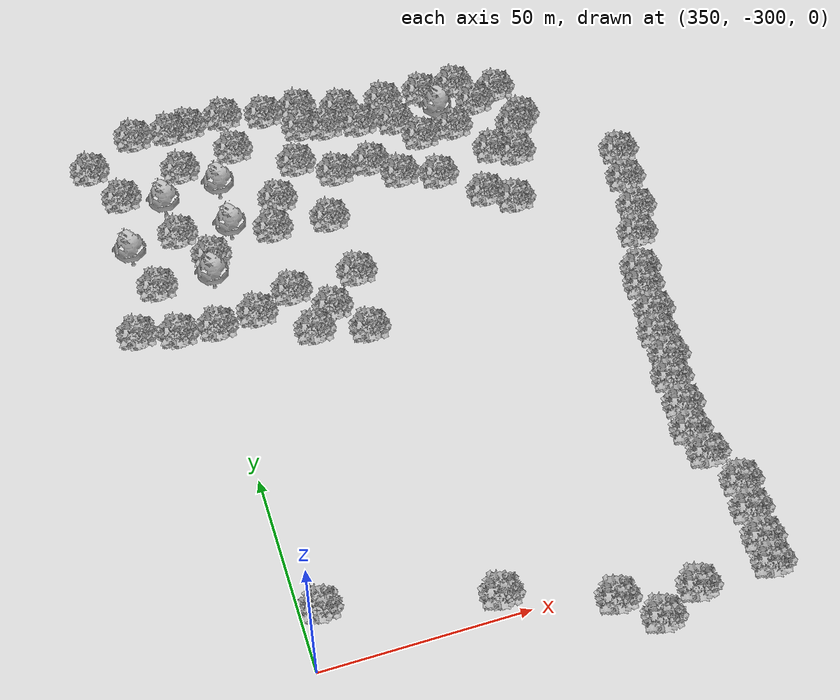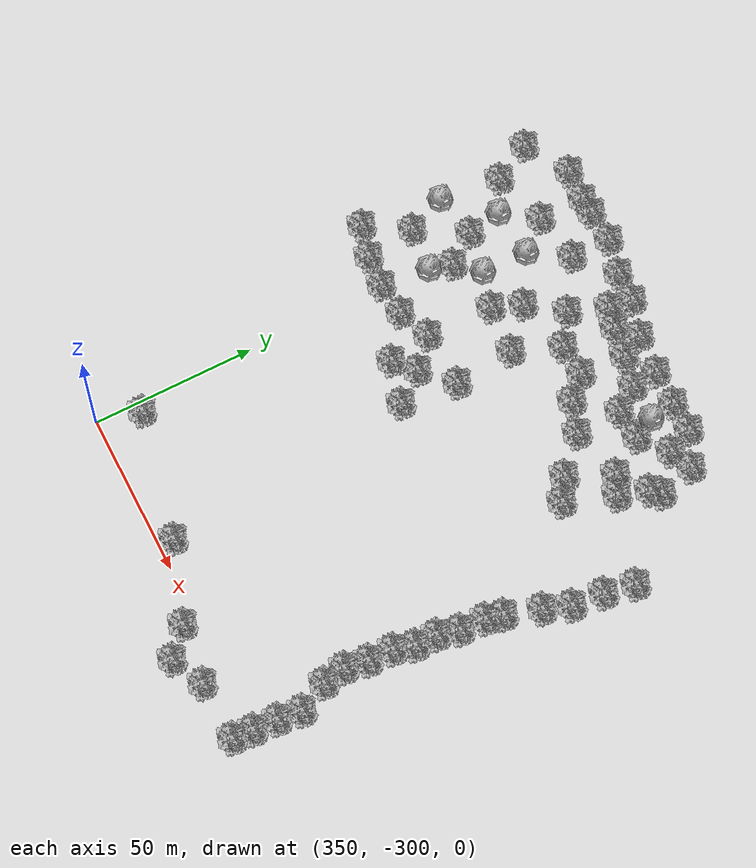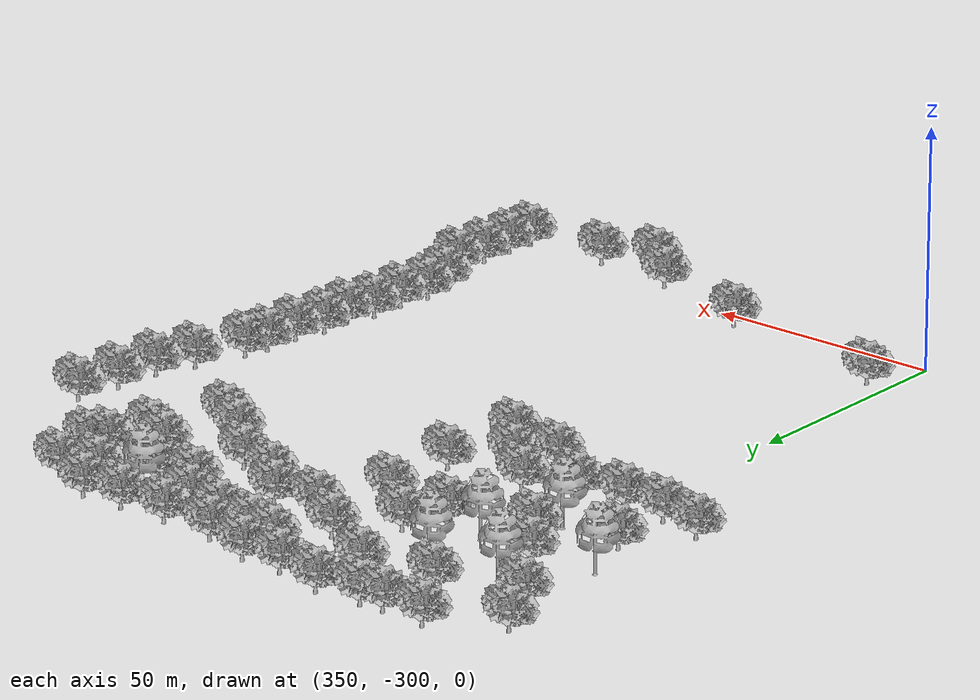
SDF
<sdf version="1.7">
 <world name="default">
  <model name="Tree_4">
   <static>1</static>
   <pose>339.28 -190.97 0 0 -0 0</pose>
   <link name="Tree_4">
    <visual name="Tree_4"><geometry><mesh><uri>model://Tree_4/Tree_4.dae</uri></mesh></geometry></visual>
    <collision name="Tree_4"><geometry><mesh><uri>model://Tree_4/Tree_4.dae</uri></mesh></geometry></collision>
   </link>
  </model>
  <model name="Tree_4_0">
   <static>1</static>
   <pose>347.897 -176.209 0 0 -0 0</pose>
   <link name="Tree_4">
    <visual name="Tree_4"><geometry><mesh><uri>model://Tree_4/Tree_4.dae</uri></mesh></geometry></visual>
    <collision name="Tree_4"><geometry><mesh><uri>model://Tree_4/Tree_4.dae</uri></mesh></geometry></collision>
   </link>
  </model>
  <model name="Tree_4_2">
   <static>1</static>
   <pose>330.451 -149.005 0 0 -0 0</pose>
   <link name="Tree_4">
    <visual name="Tree_4"><geometry><mesh><uri>model://Tree_4/Tree_4.dae</uri></mesh></geometry></visual>
    <collision name="Tree_4"><geometry><mesh><uri>model://Tree_4/Tree_4.dae</uri></mesh></geometry></collision>
   </link>
  </model>
  <model name="Tree_4_4">
   <static>1</static>
   <pose>368.265 -152.797 0 0 -0 0</pose>
   <link name="Tree_4">
    <visual name="Tree_4"><geometry><mesh><uri>model://Tree_4/Tree_4.dae</uri></mesh></geometry></visual>
    <collision name="Tree_4"><geometry><mesh><uri>model://Tree_4/Tree_4.dae</uri></mesh></geometry></collision>
   </link>
  </model>
  <model name="Tree_4_6">
   <static>1</static>
   <pose>383.073 -162.086 0 0 -0 0</pose>
   <link name="Tree_4">
    <visual name="Tree_4"><geometry><mesh><uri>model://Tree_4/Tree_4.dae</uri></mesh></geometry></visual>
    <collision name="Tree_4"><geometry><mesh><uri>model://Tree_4/Tree_4.dae</uri></mesh></geometry></collision>
   </link>
  </model>
  <model name="Tree_4_7">
   <static>1</static>
   <pose>386.443 -182.611 0 0 -0 0</pose>
   <link name="Tree_4">
    <visual name="Tree_4"><geometry><mesh><uri>model://Tree_4/Tree_4.dae</uri></mesh></geometry></visual>
    <collision name="Tree_4"><geometry><mesh><uri>model://Tree_4/Tree_4.dae</uri></mesh></geometry></collision>
   </link>
  </model>
  <model name="Tree_4_8">
   <static>1</static>
   <pose>354.486 -185.345 0 0 -0 0</pose>
   <link name="Tree_4">
    <visual name="Tree_4"><geometry><mesh><uri>model://Tree_4/Tree_4.dae</uri></mesh></geometry></visual>
    <collision name="Tree_4"><geometry><mesh><uri>model://Tree_4/Tree_4.dae</uri></mesh></geometry></collision>
   </link>
  </model>
  <model name="Tree_4_9">
   <static>1</static>
   <pose>371.051 -202.06 0 0 -0 0</pose>
   <link name="Tree_4">
    <visual name="Tree_4"><geometry><mesh><uri>model://Tree_4/Tree_4.dae</uri></mesh></geometry></visual>
    <collision name="Tree_4"><geometry><mesh><uri>model://Tree_4/Tree_4.dae</uri></mesh></geometry></collision>
   </link>
  </model>
  <model name="Tree_4_10">
   <static>1</static>
   <pose>388.218 -201.166 0 0 -0 0</pose>
   <link name="Tree_4">
    <visual name="Tree_4"><geometry><mesh><uri>model://Tree_4/Tree_4.dae</uri></mesh></geometry></visual>
    <collision name="Tree_4"><geometry><mesh><uri>model://Tree_4/Tree_4.dae</uri></mesh></geometry></collision>
   </link>
  </model>
  <model name="Tree_4_11">
   <static>1</static>
   <pose>379.431 -209.697 0 0 -0 0</pose>
   <link name="Tree_4">
    <visual name="Tree_4"><geometry><mesh><uri>model://Tree_4/Tree_4.dae</uri></mesh></geometry></visual>
    <collision name="Tree_4"><geometry><mesh><uri>model://Tree_4/Tree_4.dae</uri></mesh></geometry></collision>
   </link>
  </model>
  <model name="Tree_4_12">
   <static>1</static>
   <pose>373.388 -215.189 0 0 -0 0</pose>
   <link name="Tree_4">
    <visual name="Tree_4"><geometry><mesh><uri>model://Tree_4/Tree_4.dae</uri></mesh></geometry></visual>
    <collision name="Tree_4"><geometry><mesh><uri>model://Tree_4/Tree_4.dae</uri></mesh></geometry></collision>
   </link>
  </model>
  <model name="Tree_4_13">
   <static>1</static>
   <pose>386.429 -218.572 0 0 -0 0</pose>
   <link name="Tree_4">
    <visual name="Tree_4"><geometry><mesh><uri>model://Tree_4/Tree_4.dae</uri></mesh></geometry></visual>
    <collision name="Tree_4"><geometry><mesh><uri>model://Tree_4/Tree_4.dae</uri></mesh></geometry></collision>
   </link>
  </model>
  <model name="Tree_4_14">
   <static>1</static>
   <pose>361.127 -206.063 0 0 -0 0</pose>
   <link name="Tree_4">
    <visual name="Tree_4"><geometry><mesh><uri>model://Tree_4/Tree_4.dae</uri></mesh></geometry></visual>
    <collision name="Tree_4"><geometry><mesh><uri>model://Tree_4/Tree_4.dae</uri></mesh></geometry></collision>
   </link>
  </model>
  <model name="Tree_4_15">
   <static>1</static>
   <pose>350.839 -207.13 0 0 -0 0</pose>
   <link name="Tree_4">
    <visual name="Tree_4"><geometry><mesh><uri>model://Tree_4/Tree_4.dae</uri></mesh></geometry></visual>
    <collision name="Tree_4"><geometry><mesh><uri>model://Tree_4/Tree_4.dae</uri></mesh></geometry></collision>
   </link>
  </model>
  <model name="Tree_4_16">
   <static>1</static>
   <pose>341.073 -206.354 0 0 -0 0</pose>
   <link name="Tree_4">
    <visual name="Tree_4"><geometry><mesh><uri>model://Tree_4/Tree_4.dae</uri></mesh></geometry></visual>
    <collision name="Tree_4"><geometry><mesh><uri>model://Tree_4/Tree_4.dae</uri></mesh></geometry></collision>
   </link>
  </model>
  <model name="Tree_4_17">
   <static>1</static>
   <pose>331.419 -203.799 0 0 -0 0</pose>
   <link name="Tree_4">
    <visual name="Tree_4"><geometry><mesh><uri>model://Tree_4/Tree_4.dae</uri></mesh></geometry></visual>
    <collision name="Tree_4"><geometry><mesh><uri>model://Tree_4/Tree_4.dae</uri></mesh></geometry></collision>
   </link>
  </model>
  <model name="Tree_4_31">
   <static>1</static>
   <pose>371.664 -181.554 0 0 -0 0</pose>
   <link name="Tree_4">
    <visual name="Tree_4"><geometry><mesh><uri>model://Tree_4/Tree_4.dae</uri></mesh></geometry></visual>
    <collision name="Tree_4"><geometry><mesh><uri>model://Tree_4/Tree_4.dae</uri></mesh></geometry></collision>
   </link>
  </model>
  <model name="Tree_4_32">
   <static>1</static>
   <pose>375.208 -172.674 0 0 -0 0</pose>
   <link name="Tree_4">
    <visual name="Tree_4"><geometry><mesh><uri>model://Tree_4/Tree_4.dae</uri></mesh></geometry></visual>
    <collision name="Tree_4"><geometry><mesh><uri>model://Tree_4/Tree_4.dae</uri></mesh></geometry></collision>
   </link>
  </model>
  <model name="Tree_4_34">
   <static>1</static>
   <pose>353.29 -155.518 0 0 -0 0</pose>
   <link name="Tree_4">
    <visual name="Tree_4"><geometry><mesh><uri>model://Tree_4/Tree_4.dae</uri></mesh></geometry></visual>
    <collision name="Tree_4"><geometry><mesh><uri>model://Tree_4/Tree_4.dae</uri></mesh></geometry></collision>
   </link>
  </model>
  <model name="Tree_4_36">
   <static>1</static>
   <pose>336.554 -160.464 0 0 -0 0</pose>
   <link name="Tree_4">
    <visual name="Tree_4"><geometry><mesh><uri>model://Tree_4/Tree_4.dae</uri></mesh></geometry></visual>
    <collision name="Tree_4"><geometry><mesh><uri>model://Tree_4/Tree_4.dae</uri></mesh></geometry></collision>
   </link>
  </model>
  <model name="Tree_4_40">
   <static>1</static>
   <pose>387.436 -150.58 0 0 -0 0</pose>
   <link name="Tree_4">
    <visual name="Tree_4"><geometry><mesh><uri>model://Tree_4/Tree_4.dae</uri></mesh></geometry></visual>
    <collision name="Tree_4"><geometry><mesh><uri>model://Tree_4/Tree_4.dae</uri></mesh></geometry></collision>
   </link>
  </model>
  <model name="Tree_4_41">
   <static>1</static>
   <pose>388.374 -143.486 0 0 -0 0</pose>
   <link name="Tree_4">
    <visual name="Tree_4"><geometry><mesh><uri>model://Tree_4/Tree_4.dae</uri></mesh></geometry></visual>
    <collision name="Tree_4"><geometry><mesh><uri>model://Tree_4/Tree_4.dae</uri></mesh></geometry></collision>
   </link>
  </model>
  <model name="Tree_4_42">
   <static>1</static>
   <pose>379.071 -143.154 0 0 -0 0</pose>
   <link name="Tree_4">
    <visual name="Tree_4"><geometry><mesh><uri>model://Tree_4/Tree_4.dae</uri></mesh></geometry></visual>
    <collision name="Tree_4"><geometry><mesh><uri>model://Tree_4/Tree_4.dae</uri></mesh></geometry></collision>
   </link>
  </model>
  <model name="Tree_4_43">
   <static>1</static>
   <pose>368.353 -140.633 0 0 -0 0</pose>
   <link name="Tree_4">
    <visual name="Tree_4"><geometry><mesh><uri>model://Tree_4/Tree_4.dae</uri></mesh></geometry></visual>
    <collision name="Tree_4"><geometry><mesh><uri>model://Tree_4/Tree_4.dae</uri></mesh></geometry></collision>
   </link>
  </model>
  <model name="Tree_4_44">
   <static>1</static>
   <pose>358.398 -141.203 0 0 -0 0</pose>
   <link name="Tree_4">
    <visual name="Tree_4"><geometry><mesh><uri>model://Tree_4/Tree_4.dae</uri></mesh></geometry></visual>
    <collision name="Tree_4"><geometry><mesh><uri>model://Tree_4/Tree_4.dae</uri></mesh></geometry></collision>
   </link>
  </model>
  <model name="Tree_4_45">
   <static>1</static>
   <pose>353.327 -141.537 0 0 -0 0</pose>
   <link name="Tree_4">
    <visual name="Tree_4"><geometry><mesh><uri>model://Tree_4/Tree_4.dae</uri></mesh></geometry></visual>
    <collision name="Tree_4"><geometry><mesh><uri>model://Tree_4/Tree_4.dae</uri></mesh></geometry></collision>
   </link>
  </model>
  <model name="Tree_4_46">
   <static>1</static>
   <pose>343.755 -140.995 0 0 -0 0</pose>
   <link name="Tree_4">
    <visual name="Tree_4"><geometry><mesh><uri>model://Tree_4/Tree_4.dae</uri></mesh></geometry></visual>
    <collision name="Tree_4"><geometry><mesh><uri>model://Tree_4/Tree_4.dae</uri></mesh></geometry></collision>
   </link>
  </model>
  <model name="Tree_4_51">
   <static>1</static>
   <pose>392.118 -168.324 0 0 -0 0</pose>
   <link name="Tree_4">
    <visual name="Tree_4"><geometry><mesh><uri>model://Tree_4/Tree_4.dae</uri></mesh></geometry></visual>
    <collision name="Tree_4"><geometry><mesh><uri>model://Tree_4/Tree_4.dae</uri></mesh></geometry></collision>
   </link>
  </model>
  <model name="Tree_4_52">
   <static>1</static>
   <pose>393.74 -152.171 0 0 -0 0</pose>
   <link name="Tree_4">
    <visual name="Tree_4"><geometry><mesh><uri>model://Tree_4/Tree_4.dae</uri></mesh></geometry></visual>
    <collision name="Tree_4"><geometry><mesh><uri>model://Tree_4/Tree_4.dae</uri></mesh></geometry></collision>
   </link>
  </model>
  <model name="Tree_4_53">
   <static>1</static>
   <pose>401.908 -167.588 0 0 -0 0</pose>
   <link name="Tree_4">
    <visual name="Tree_4"><geometry><mesh><uri>model://Tree_4/Tree_4.dae</uri></mesh></geometry></visual>
    <collision name="Tree_4"><geometry><mesh><uri>model://Tree_4/Tree_4.dae</uri></mesh></geometry></collision>
   </link>
  </model>
  <model name="Tree_4_54">
   <static>1</static>
   <pose>408.254 -173.837 0 0 -0 0</pose>
   <link name="Tree_4">
    <visual name="Tree_4"><geometry><mesh><uri>model://Tree_4/Tree_4.dae</uri></mesh></geometry></visual>
    <collision name="Tree_4"><geometry><mesh><uri>model://Tree_4/Tree_4.dae</uri></mesh></geometry></collision>
   </link>
  </model>
  <model name="Tree_4_55">
   <static>1</static>
   <pose>417.777 -177.154 0 0 -0 0</pose>
   <link name="Tree_4">
    <visual name="Tree_4"><geometry><mesh><uri>model://Tree_4/Tree_4.dae</uri></mesh></geometry></visual>
    <collision name="Tree_4"><geometry><mesh><uri>model://Tree_4/Tree_4.dae</uri></mesh></geometry></collision>
   </link>
  </model>
  <model name="Tree_4_56">
   <static>1</static>
   <pose>427.672 -186.53 0 0 -0 0</pose>
   <link name="Tree_4">
    <visual name="Tree_4"><geometry><mesh><uri>model://Tree_4/Tree_4.dae</uri></mesh></geometry></visual>
    <collision name="Tree_4"><geometry><mesh><uri>model://Tree_4/Tree_4.dae</uri></mesh></geometry></collision>
   </link>
  </model>
  <model name="Tree_4_57">
   <static>1</static>
   <pose>434.262 -190.8 0 0 -0 0</pose>
   <link name="Tree_4">
    <visual name="Tree_4"><geometry><mesh><uri>model://Tree_4/Tree_4.dae</uri></mesh></geometry></visual>
    <collision name="Tree_4"><geometry><mesh><uri>model://Tree_4/Tree_4.dae</uri></mesh></geometry></collision>
   </link>
  </model>
  <model name="Tree_4_58">
   <static>1</static>
   <pose>439.753 -175.669 0 0 -0 0</pose>
   <link name="Tree_4">
    <visual name="Tree_4"><geometry><mesh><uri>model://Tree_4/Tree_4.dae</uri></mesh></geometry></visual>
    <collision name="Tree_4"><geometry><mesh><uri>model://Tree_4/Tree_4.dae</uri></mesh></geometry></collision>
   </link>
  </model>
  <model name="Tree_4_59">
   <static>1</static>
   <pose>434.03 -173.026 0 0 -0 0</pose>
   <link name="Tree_4">
    <visual name="Tree_4"><geometry><mesh><uri>model://Tree_4/Tree_4.dae</uri></mesh></geometry></visual>
    <collision name="Tree_4"><geometry><mesh><uri>model://Tree_4/Tree_4.dae</uri></mesh></geometry></collision>
   </link>
  </model>
  <model name="Tree_4_60">
   <static>1</static>
   <pose>402.92 -153.695 0 0 -0 0</pose>
   <link name="Tree_4">
    <visual name="Tree_4"><geometry><mesh><uri>model://Tree_4/Tree_4.dae</uri></mesh></geometry></visual>
    <collision name="Tree_4"><geometry><mesh><uri>model://Tree_4/Tree_4.dae</uri></mesh></geometry></collision>
   </link>
  </model>
  <model name="Tree_4_61">
   <static>1</static>
   <pose>412.315 -155.906 0 0 -0 0</pose>
   <link name="Tree_4">
    <visual name="Tree_4"><geometry><mesh><uri>model://Tree_4/Tree_4.dae</uri></mesh></geometry></visual>
    <collision name="Tree_4"><geometry><mesh><uri>model://Tree_4/Tree_4.dae</uri></mesh></geometry></collision>
   </link>
  </model>
  <model name="Tree_4_62">
   <static>1</static>
   <pose>417.374 -163.016 0 0 -0 0</pose>
   <link name="Tree_4">
    <visual name="Tree_4"><geometry><mesh><uri>model://Tree_4/Tree_4.dae</uri></mesh></geometry></visual>
    <collision name="Tree_4"><geometry><mesh><uri>model://Tree_4/Tree_4.dae</uri></mesh></geometry></collision>
   </link>
  </model>
  <model name="Tree_4_63">
   <static>1</static>
   <pose>426.644 -162.252 0 0 -0 0</pose>
   <link name="Tree_4">
    <visual name="Tree_4"><geometry><mesh><uri>model://Tree_4/Tree_4.dae</uri></mesh></geometry></visual>
    <collision name="Tree_4"><geometry><mesh><uri>model://Tree_4/Tree_4.dae</uri></mesh></geometry></collision>
   </link>
  </model>
  <model name="Tree_4_64">
   <static>1</static>
   <pose>434.963 -155.537 0 0 -0 0</pose>
   <link name="Tree_4">
    <visual name="Tree_4"><geometry><mesh><uri>model://Tree_4/Tree_4.dae</uri></mesh></geometry></visual>
    <collision name="Tree_4"><geometry><mesh><uri>model://Tree_4/Tree_4.dae</uri></mesh></geometry></collision>
   </link>
  </model>
  <model name="Tree_4_65">
   <static>1</static>
   <pose>441.876 -152.616 0 0 -0 0</pose>
   <link name="Tree_4">
    <visual name="Tree_4"><geometry><mesh><uri>model://Tree_4/Tree_4.dae</uri></mesh></geometry></visual>
    <collision name="Tree_4"><geometry><mesh><uri>model://Tree_4/Tree_4.dae</uri></mesh></geometry></collision>
   </link>
  </model>
  <model name="Tree_4_66">
   <static>1</static>
   <pose>431.436 -147.754 0 0 -0 0</pose>
   <link name="Tree_4">
    <visual name="Tree_4"><geometry><mesh><uri>model://Tree_4/Tree_4.dae</uri></mesh></geometry></visual>
    <collision name="Tree_4"><geometry><mesh><uri>model://Tree_4/Tree_4.dae</uri></mesh></geometry></collision>
   </link>
  </model>
  <model name="Tree_4_67">
   <static>1</static>
   <pose>422.13 -147.897 0 0 -0 0</pose>
   <link name="Tree_4">
    <visual name="Tree_4"><geometry><mesh><uri>model://Tree_4/Tree_4.dae</uri></mesh></geometry></visual>
    <collision name="Tree_4"><geometry><mesh><uri>model://Tree_4/Tree_4.dae</uri></mesh></geometry></collision>
   </link>
  </model>
  <model name="Tree_4_68">
   <static>1</static>
   <pose>411.372 -147.824 0 0 -0 0</pose>
   <link name="Tree_4">
    <visual name="Tree_4"><geometry><mesh><uri>model://Tree_4/Tree_4.dae</uri></mesh></geometry></visual>
    <collision name="Tree_4"><geometry><mesh><uri>model://Tree_4/Tree_4.dae</uri></mesh></geometry></collision>
   </link>
  </model>
  <model name="Tree_4_69">
   <static>1</static>
   <pose>399.282 -146.87 0 0 -0 0</pose>
   <link name="Tree_4">
    <visual name="Tree_4"><geometry><mesh><uri>model://Tree_4/Tree_4.dae</uri></mesh></geometry></visual>
    <collision name="Tree_4"><geometry><mesh><uri>model://Tree_4/Tree_4.dae</uri></mesh></geometry></collision>
   </link>
  </model>
  <model name="Tree_4_70">
   <static>1</static>
   <pose>442.613 -166.62 0 0 -0 0</pose>
   <link name="Tree_4">
    <visual name="Tree_4"><geometry><mesh><uri>model://Tree_4/Tree_4.dae</uri></mesh></geometry></visual>
    <collision name="Tree_4"><geometry><mesh><uri>model://Tree_4/Tree_4.dae</uri></mesh></geometry></collision>
   </link>
  </model>
  <model name="Tree_4_71">
   <static>1</static>
   <pose>445.006 -163.936 0 0 -0 0</pose>
   <link name="Tree_4">
    <visual name="Tree_4"><geometry><mesh><uri>model://Tree_4/Tree_4.dae</uri></mesh></geometry></visual>
    <collision name="Tree_4"><geometry><mesh><uri>model://Tree_4/Tree_4.dae</uri></mesh></geometry></collision>
   </link>
  </model>
  <model name="Tree_4_72">
   <static>1</static>
   <pose>464.028 -192.907 0 0 -0 0</pose>
   <link name="Tree_4">
    <visual name="Tree_4"><geometry><mesh><uri>model://Tree_4/Tree_4.dae</uri></mesh></geometry></visual>
    <collision name="Tree_4"><geometry><mesh><uri>model://Tree_4/Tree_4.dae</uri></mesh></geometry></collision>
   </link>
  </model>
  <model name="Tree_4_73">
   <static>1</static>
   <pose>465.798 -183.516 0 0 -0 0</pose>
   <link name="Tree_4">
    <visual name="Tree_4"><geometry><mesh><uri>model://Tree_4/Tree_4.dae</uri></mesh></geometry></visual>
    <collision name="Tree_4"><geometry><mesh><uri>model://Tree_4/Tree_4.dae</uri></mesh></geometry></collision>
   </link>
  </model>
  <model name="Tree_4_74">
   <static>1</static>
   <pose>463.115 -202.702 0 0 -0 0</pose>
   <link name="Tree_4">
    <visual name="Tree_4"><geometry><mesh><uri>model://Tree_4/Tree_4.dae</uri></mesh></geometry></visual>
    <collision name="Tree_4"><geometry><mesh><uri>model://Tree_4/Tree_4.dae</uri></mesh></geometry></collision>
   </link>
  </model>
  <model name="Tree_4_75">
   <static>1</static>
   <pose>460.152 -210.776 0 0 -0 0</pose>
   <link name="Tree_4">
    <visual name="Tree_4"><geometry><mesh><uri>model://Tree_4/Tree_4.dae</uri></mesh></geometry></visual>
    <collision name="Tree_4"><geometry><mesh><uri>model://Tree_4/Tree_4.dae</uri></mesh></geometry></collision>
   </link>
  </model>
  <model name="Tree_4_76">
   <static>1</static>
   <pose>456.682 -221.476 0 0 -0 0</pose>
   <link name="Tree_4">
    <visual name="Tree_4"><geometry><mesh><uri>model://Tree_4/Tree_4.dae</uri></mesh></geometry></visual>
    <collision name="Tree_4"><geometry><mesh><uri>model://Tree_4/Tree_4.dae</uri></mesh></geometry></collision>
   </link>
  </model>
  <model name="Tree_4_77">
   <static>1</static>
   <pose>455.466 -226.649 0 0 -0 0</pose>
   <link name="Tree_4">
    <visual name="Tree_4"><geometry><mesh><uri>model://Tree_4/Tree_4.dae</uri></mesh></geometry></visual>
    <collision name="Tree_4"><geometry><mesh><uri>model://Tree_4/Tree_4.dae</uri></mesh></geometry></collision>
   </link>
  </model>
  <model name="Tree_4_78">
   <static>1</static>
   <pose>455.046 -234.53 0 0 -0 0</pose>
   <link name="Tree_4">
    <visual name="Tree_4"><geometry><mesh><uri>model://Tree_4/Tree_4.dae</uri></mesh></geometry></visual>
    <collision name="Tree_4"><geometry><mesh><uri>model://Tree_4/Tree_4.dae</uri></mesh></geometry></collision>
   </link>
  </model>
  <model name="Tree_4_79">
   <static>1</static>
   <pose>453.331 -241.225 0 0 -0 0</pose>
   <link name="Tree_4">
    <visual name="Tree_4"><geometry><mesh><uri>model://Tree_4/Tree_4.dae</uri></mesh></geometry></visual>
    <collision name="Tree_4"><geometry><mesh><uri>model://Tree_4/Tree_4.dae</uri></mesh></geometry></collision>
   </link>
  </model>
  <model name="Tree_4_80">
   <static>1</static>
   <pose>453.377 -248.043 0 0 -0 0</pose>
   <link name="Tree_4">
    <visual name="Tree_4"><geometry><mesh><uri>model://Tree_4/Tree_4.dae</uri></mesh></geometry></visual>
    <collision name="Tree_4"><geometry><mesh><uri>model://Tree_4/Tree_4.dae</uri></mesh></geometry></collision>
   </link>
  </model>
  <model name="Tree_4_81">
   <static>1</static>
   <pose>451.584 -254.251 0 0 -0 0</pose>
   <link name="Tree_4">
    <visual name="Tree_4"><geometry><mesh><uri>model://Tree_4/Tree_4.dae</uri></mesh></geometry></visual>
    <collision name="Tree_4"><geometry><mesh><uri>model://Tree_4/Tree_4.dae</uri></mesh></geometry></collision>
   </link>
  </model>
  <model name="Tree_4_82">
   <static>1</static>
   <pose>451.289 -261.958 0 0 -0 0</pose>
   <link name="Tree_4">
    <visual name="Tree_4"><geometry><mesh><uri>model://Tree_4/Tree_4.dae</uri></mesh></geometry></visual>
    <collision name="Tree_4"><geometry><mesh><uri>model://Tree_4/Tree_4.dae</uri></mesh></geometry></collision>
   </link>
  </model>
  <model name="Tree_4_83">
   <static>1</static>
   <pose>450.185 -269.07 0 0 -0 0</pose>
   <link name="Tree_4">
    <visual name="Tree_4"><geometry><mesh><uri>model://Tree_4/Tree_4.dae</uri></mesh></geometry></visual>
    <collision name="Tree_4"><geometry><mesh><uri>model://Tree_4/Tree_4.dae</uri></mesh></geometry></collision>
   </link>
  </model>
  <model name="Tree_4_84">
   <static>1</static>
   <pose>451.539 -276.12 0 0 -0 0</pose>
   <link name="Tree_4">
    <visual name="Tree_4"><geometry><mesh><uri>model://Tree_4/Tree_4.dae</uri></mesh></geometry></visual>
    <collision name="Tree_4"><geometry><mesh><uri>model://Tree_4/Tree_4.dae</uri></mesh></geometry></collision>
   </link>
  </model>
  <model name="Tree_4_85">
   <static>1</static>
   <pose>455.94 -285.266 0 0 -0 0</pose>
   <link name="Tree_4">
    <visual name="Tree_4"><geometry><mesh><uri>model://Tree_4/Tree_4.dae</uri></mesh></geometry></visual>
    <collision name="Tree_4"><geometry><mesh><uri>model://Tree_4/Tree_4.dae</uri></mesh></geometry></collision>
   </link>
  </model>
  <model name="Tree_4_86">
   <static>1</static>
   <pose>455.097 -292.65 0 0 -0 0</pose>
   <link name="Tree_4">
    <visual name="Tree_4"><geometry><mesh><uri>model://Tree_4/Tree_4.dae</uri></mesh></geometry></visual>
    <collision name="Tree_4"><geometry><mesh><uri>model://Tree_4/Tree_4.dae</uri></mesh></geometry></collision>
   </link>
  </model>
  <model name="Tree_4_87">
   <static>1</static>
   <pose>454.693 -300.126 0 0 -0 0</pose>
   <link name="Tree_4">
    <visual name="Tree_4"><geometry><mesh><uri>model://Tree_4/Tree_4.dae</uri></mesh></geometry></visual>
    <collision name="Tree_4"><geometry><mesh><uri>model://Tree_4/Tree_4.dae</uri></mesh></geometry></collision>
   </link>
  </model>
  <model name="Tree_4_88">
   <static>1</static>
   <pose>454.234 -306.416 0 0 -0 0</pose>
   <link name="Tree_4">
    <visual name="Tree_4"><geometry><mesh><uri>model://Tree_4/Tree_4.dae</uri></mesh></geometry></visual>
    <collision name="Tree_4"><geometry><mesh><uri>model://Tree_4/Tree_4.dae</uri></mesh></geometry></collision>
   </link>
  </model>
  <model name="Tree_4_89">
   <static>1</static>
   <pose>436.094 -306.929 0 0 -0 0</pose>
   <link name="Tree_4">
    <visual name="Tree_4"><geometry><mesh><uri>model://Tree_4/Tree_4.dae</uri></mesh></geometry></visual>
    <collision name="Tree_4"><geometry><mesh><uri>model://Tree_4/Tree_4.dae</uri></mesh></geometry></collision>
   </link>
  </model>
  <model name="Tree_4_90">
   <static>1</static>
   <pose>425.825 -311.521 0 0 -0 0</pose>
   <link name="Tree_4">
    <visual name="Tree_4"><geometry><mesh><uri>model://Tree_4/Tree_4.dae</uri></mesh></geometry></visual>
    <collision name="Tree_4"><geometry><mesh><uri>model://Tree_4/Tree_4.dae</uri></mesh></geometry></collision>
   </link>
  </model>
  <model name="Tree_4_91">
   <static>1</static>
   <pose>417.894 -304.345 0 0 -0 0</pose>
   <link name="Tree_4">
    <visual name="Tree_4"><geometry><mesh><uri>model://Tree_4/Tree_4.dae</uri></mesh></geometry></visual>
    <collision name="Tree_4"><geometry><mesh><uri>model://Tree_4/Tree_4.dae</uri></mesh></geometry></collision>
   </link>
  </model>
  <model name="Tree_4_92">
   <static>1</static>
   <pose>393.667 -295.69 0 0 -0 0</pose>
   <link name="Tree_4">
    <visual name="Tree_4"><geometry><mesh><uri>model://Tree_4/Tree_4.dae</uri></mesh></geometry></visual>
    <collision name="Tree_4"><geometry><mesh><uri>model://Tree_4/Tree_4.dae</uri></mesh></geometry></collision>
   </link>
  </model>
  <model name="Tree_4_93">
   <static>1</static>
   <pose>354.471 -286.902 0 0 -0 0</pose>
   <link name="Tree_4">
    <visual name="Tree_4"><geometry><mesh><uri>model://Tree_4/Tree_4.dae</uri></mesh></geometry></visual>
    <collision name="Tree_4"><geometry><mesh><uri>model://Tree_4/Tree_4.dae</uri></mesh></geometry></collision>
   </link>
  </model>
  <model name="Tree_5">
   <static>1</static>
   <pose>361.384 -178.394 0 0 -0 0</pose>
   <link name="tree">
    <visual name="tree_visual">
     <geometry><mesh><uri>model://Tree_5/Tree.dae</uri><scale>1.5 1.5 1.5</scale></mesh></geometry>
    </visual>
    <collision name="tree_collision">
     <geometry><mesh><uri>model://Tree_5/Tree.dae</uri><scale>1.5 1.5 1.5</scale></mesh></geometry>
    </collision>
   </link>
  </model>
  <model name="Tree_5_0">
   <static>1</static>
   <pose>361.739 -164.279 0 0 -0 0</pose>
   <link name="tree">
    <visual name="tree_visual">
     <geometry><mesh><uri>model://Tree_5/Tree.dae</uri><scale>1.5 1.5 1.5</scale></mesh></geometry>
    </visual>
    <collision name="tree_collision">
     <geometry><mesh><uri>model://Tree_5/Tree.dae</uri><scale>1.5 1.5 1.5</scale></mesh></geometry>
    </collision>
   </link>
  </model>
  <model name="Tree_5_1">
   <static>1</static>
   <pose>346.883 -165.778 0 0 -0 0</pose>
   <link name="tree">
    <visual name="tree_visual">
     <geometry><mesh><uri>model://Tree_5/Tree.dae</uri><scale>1.5 1.5 1.5</scale></mesh></geometry>
    </visual>
    <collision name="tree_collision">
     <geometry><mesh><uri>model://Tree_5/Tree.dae</uri><scale>1.5 1.5 1.5</scale></mesh></geometry>
    </collision>
   </link>
  </model>
  <model name="Tree_5_2">
   <static>1</static>
   <pose>335.236 -179.143 0 0 -0 0</pose>
   <link name="tree">
    <visual name="tree_visual">
     <geometry><mesh><uri>model://Tree_5/Tree.dae</uri><scale>1.5 1.5 1.5</scale></mesh></geometry>
    </visual>
    <collision name="tree_collision">
     <geometry><mesh><uri>model://Tree_5/Tree.dae</uri><scale>1.5 1.5 1.5</scale></mesh></geometry>
    </collision>
   </link>
  </model>
  <model name="Tree_5_3">
   <static>1</static>
   <pose>353.451 -192.224 0 0 -0 0</pose>
   <link name="tree">
    <visual name="tree_visual">
     <geometry><mesh><uri>model://Tree_5/Tree.dae</uri><scale>1.5 1.5 1.5</scale></mesh></geometry>
    </visual>
    <collision name="tree_collision">
     <geometry><mesh><uri>model://Tree_5/Tree.dae</uri><scale>1.5 1.5 1.5</scale></mesh></geometry>
    </collision>
   </link>
  </model>
  <model name="Tree_5_4">
   <static>1</static>
   <pose>424.041 -155.732 0 0 -0 0</pose>
   <link name="tree">
    <visual name="tree_visual">
     <geometry><mesh><uri>model://Tree_5/Tree.dae</uri><scale>1.5 1.5 1.5</scale></mesh></geometry>
    </visual>
    <collision name="tree_collision">
     <geometry><mesh><uri>model://Tree_5/Tree.dae</uri><scale>1.5 1.5 1.5</scale></mesh></geometry>
    </collision>
   </link>
  </model>
 </world>
</sdf>
